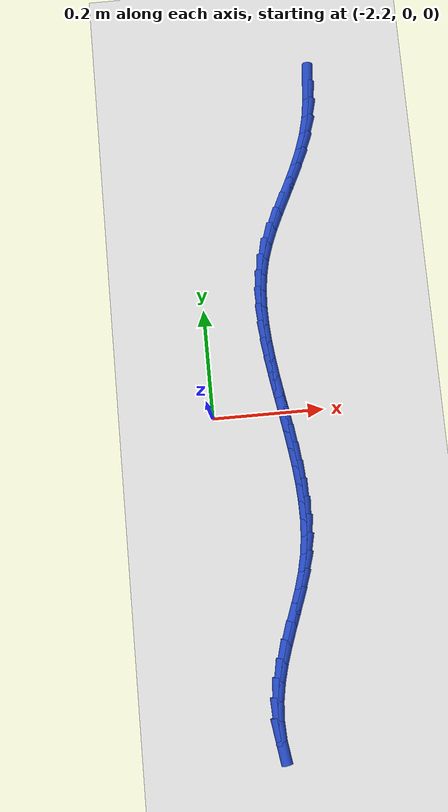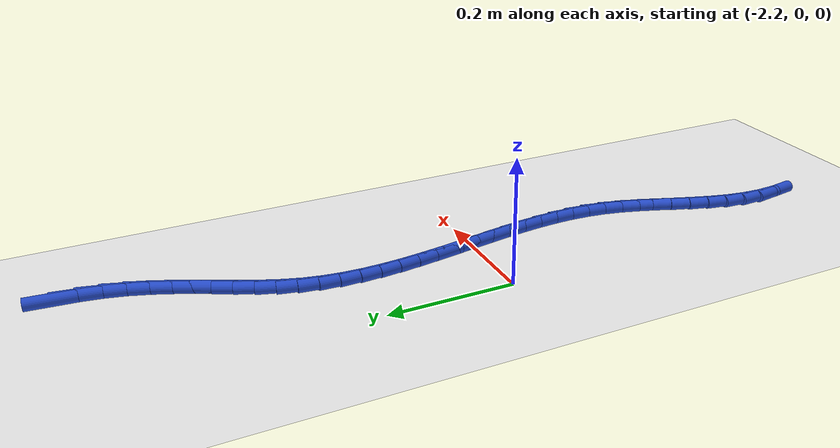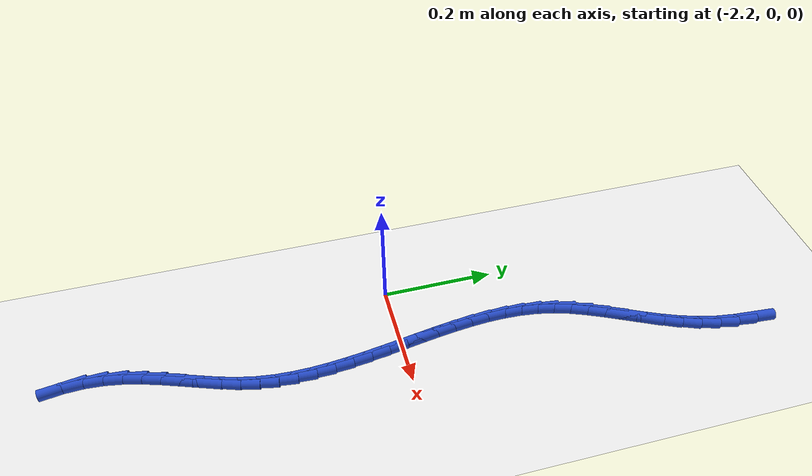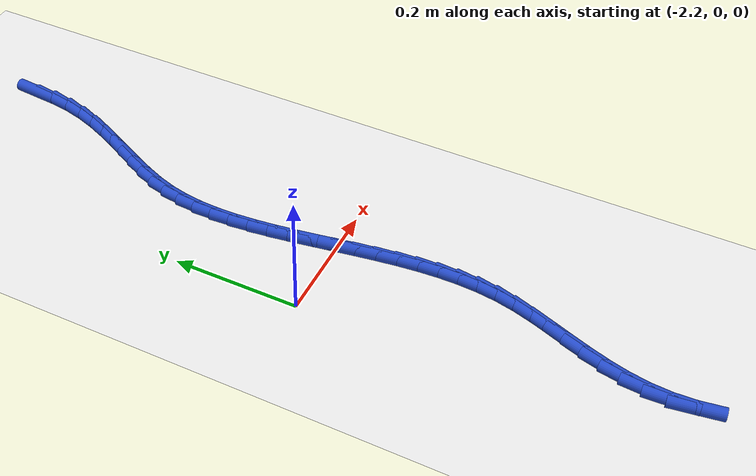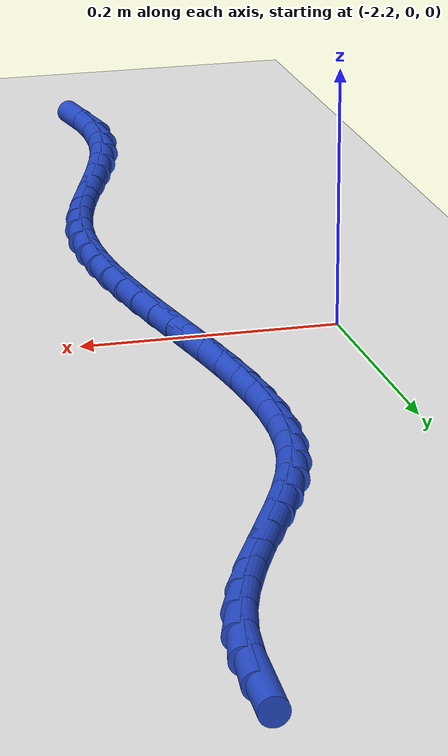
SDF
<sdf version="1.6">
 <world name="default">
  <model name="ground_plane">
   <static>1</static>
   <link name="link">
    <collision name="collision">
     <geometry><plane><normal>0 0 1</normal><size>100 100</size></plane></geometry>
     <surface><friction><ode><mu>100</mu><mu2>50</mu2></ode></friction></surface>
    </collision>
    <visual name="visual">
     <cast_shadows>0</cast_shadows>
     <geometry><plane><normal>0 0 1</normal><size>100 100</size></plane></geometry>
     <material>
      <script><uri>file://media/materials/scripts/gazebo.material</uri><name>Gazebo/WhiteGlow</name></script>
     </material>
    </visual>
   </link>
  </model>
  <model name="line">
   <link name="link_95">
    <pose>-1.9696212287315218 0.6146577486196141 0.01 0 1.57 1.4900182959752706</pose>
    <collision name="collision">
     <geometry><cylinder><radius>0.01</radius><length>0.08</length></cylinder></geometry>
    </collision>
    <visual name="visual">
     <material>
      <script><name>Gazebo/Blue</name><uri>file://media/materials/scripts/gazebo.material</uri></script>
     </material>
     <geometry><cylinder><radius>0.01</radius><length>0.08</length></cylinder></geometry>
    </visual>
   </link>
   <link name="link_96">
    <pose>-1.972421785812799 0.5800634027855969 0.01 0 1.57 1.422678304903201</pose>
    <collision name="collision">
     <geometry><cylinder><radius>0.01</radius><length>0.08</length></cylinder></geometry>
    </collision>
    <visual name="visual">
     <material>
      <script><name>Gazebo/Blue</name><uri>file://media/materials/scripts/gazebo.material</uri></script>
     </material>
     <geometry><cylinder><radius>0.01</radius><length>0.08</length></cylinder></geometry>
    </visual>
   </link>
   <link name="link_97">
    <pose>-1.977451255867348 0.5463562572593942 0.01 0 1.57 1.329379119762598</pose>
    <collision name="collision">
     <geometry><cylinder><radius>0.01</radius><length>0.08</length></cylinder></geometry>
    </collision>
    <visual name="visual">
     <material>
      <script><name>Gazebo/Blue</name><uri>file://media/materials/scripts/gazebo.material</uri></script>
     </material>
     <geometry><cylinder><radius>0.01</radius><length>0.08</length></cylinder></geometry>
    </visual>
   </link>
   <link name="link_98">
    <pose>-1.9854035048885796 0.514058834105539 0.01 0 1.57 1.2439595755664425</pose>
    <collision name="collision">
     <geometry><cylinder><radius>0.01</radius><length>0.08</length></cylinder></geometry>
    </collision>
    <visual name="visual">
     <material>
      <script><name>Gazebo/Blue</name><uri>file://media/materials/scripts/gazebo.material</uri></script>
     </material>
     <geometry><cylinder><radius>0.01</radius><length>0.08</length></cylinder></geometry>
    </visual>
   </link>
   <link name="link_99">
    <pose>-1.995901260927855 0.48309148231596033 0.01 0 1.57 1.1788622702502694</pose>
    <collision name="collision">
     <geometry><cylinder><radius>0.01</radius><length>0.08</length></cylinder></geometry>
    </collision>
    <visual name="visual">
     <material>
      <script><name>Gazebo/Blue</name><uri>file://media/materials/scripts/gazebo.material</uri></script>
     </material>
     <geometry><cylinder><radius>0.01</radius><length>0.08</length></cylinder></geometry>
    </visual>
   </link>
   <link name="link_100">
    <pose>-2.0082560915966883 0.4531996224902879 0.01 0 1.57 1.1353848162265325</pose>
    <collision name="collision">
     <geometry><cylinder><radius>0.01</radius><length>0.08</length></cylinder></geometry>
    </collision>
    <visual name="visual">
     <material>
      <script><name>Gazebo/Blue</name><uri>file://media/materials/scripts/gazebo.material</uri></script>
     </material>
     <geometry><cylinder><radius>0.01</radius><length>0.08</length></cylinder></geometry>
    </visual>
   </link>
   <link name="link_101">
    <pose>-2.0217795305533084 0.4241286561402684 0.01 0 1.57 1.1141545048040031</pose>
    <collision name="collision">
     <geometry><cylinder><radius>0.01</radius><length>0.08</length></cylinder></geometry>
    </collision>
    <visual name="visual">
     <material>
      <script><name>Gazebo/Blue</name><uri>file://media/materials/scripts/gazebo.material</uri></script>
     </material>
     <geometry><cylinder><radius>0.01</radius><length>0.08</length></cylinder></geometry>
    </visual>
   </link>
   <link name="link_102">
    <pose>-2.035783111455945 0.3956239847776501 0.01 0 1.57 1.1157328827567108</pose>
    <collision name="collision">
     <geometry><cylinder><radius>0.01</radius><length>0.08</length></cylinder></geometry>
    </collision>
    <visual name="visual">
     <material>
      <script><name>Gazebo/Blue</name><uri>file://media/materials/scripts/gazebo.material</uri></script>
     </material>
     <geometry><cylinder><radius>0.01</radius><length>0.08</length></cylinder></geometry>
    </visual>
   </link>
   <link name="link_103">
    <pose>-2.0495783679628268 0.36743100991417954 0.01 0 1.57 1.1409501786714986</pose>
    <collision name="collision">
     <geometry><cylinder><radius>0.01</radius><length>0.08</length></cylinder></geometry>
    </collision>
    <visual name="visual">
     <material>
      <script><name>Gazebo/Blue</name><uri>file://media/materials/scripts/gazebo.material</uri></script>
     </material>
     <geometry><cylinder><radius>0.01</radius><length>0.08</length></cylinder></geometry>
    </visual>
   </link>
   <link name="link_104">
    <pose>-2.062476833732182 0.3392951330616047 0.01 0 1.57 1.1909029460401648</pose>
    <collision name="collision">
     <geometry><cylinder><radius>0.01</radius><length>0.08</length></cylinder></geometry>
    </collision>
    <visual name="visual">
     <material>
      <script><name>Gazebo/Blue</name><uri>file://media/materials/scripts/gazebo.material</uri></script>
     </material>
     <geometry><cylinder><radius>0.01</radius><length>0.08</length></cylinder></geometry>
    </visual>
   </link>
   <link name="link_105">
    <pose>-2.0737900424222415 0.3109617557316721 0.01 0 1.57 1.2665187512723604</pose>
    <collision name="collision">
     <geometry><cylinder><radius>0.01</radius><length>0.08</length></cylinder></geometry>
    </collision>
    <visual name="visual">
     <material>
      <script><name>Gazebo/Blue</name><uri>file://media/materials/scripts/gazebo.material</uri></script>
     </material>
     <geometry><cylinder><radius>0.01</radius><length>0.08</length></cylinder></geometry>
    </visual>
   </link>
   <link name="link_106">
    <pose>-2.0828295277040314 0.2821762794402366 0.01 0 1.57 1.3615990546784527</pose>
    <collision name="collision">
     <geometry><cylinder><radius>0.01</radius><length>0.08</length></cylinder></geometry>
    </collision>
    <visual name="visual">
     <material>
      <script><name>Gazebo/Blue</name><uri>file://media/materials/scripts/gazebo.material</uri></script>
     </material>
     <geometry><cylinder><radius>0.01</radius><length>0.08</length></cylinder></geometry>
    </visual>
   </link>
   <link name="link_107">
    <pose>-2.0890790820119807 0.2527393766968404 0.01 0 1.57 1.4508606913899837</pose>
    <collision name="collision">
     <geometry><cylinder><radius>0.01</radius><length>0.08</length></cylinder></geometry>
    </collision>
    <visual name="visual">
     <material>
      <script><name>Gazebo/Blue</name><uri>file://media/materials/scripts/gazebo.material</uri></script>
     </material>
     <geometry><cylinder><radius>0.01</radius><length>0.08</length></cylinder></geometry>
    </visual>
   </link>
   <link name="link_108">
    <pose>-2.092702861386214 0.22267002166264438 0.01 0 1.57 1.5273970011703901</pose>
    <collision name="collision">
     <geometry><cylinder><radius>0.01</radius><length>0.08</length></cylinder></geometry>
    </collision>
    <visual name="visual">
     <material>
      <script><name>Gazebo/Blue</name><uri>file://media/materials/scripts/gazebo.material</uri></script>
     </material>
     <geometry><cylinder><radius>0.01</radius><length>0.08</length></cylinder></geometry>
    </visual>
   </link>
   <link name="link_109">
    <pose>-2.0940329721198263 0.19204107706267173 0.01 0 1.57 -1.5505054276512902</pose>
    <collision name="collision">
     <geometry><cylinder><radius>0.01</radius><length>0.08</length></cylinder></geometry>
    </collision>
    <visual name="visual">
     <material>
      <script><name>Gazebo/Blue</name><uri>file://media/materials/scripts/gazebo.material</uri></script>
     </material>
     <geometry><cylinder><radius>0.01</radius><length>0.08</length></cylinder></geometry>
    </visual>
   </link>
   <link name="link_110">
    <pose>-2.093401520505915 0.1609254056219439 0.01 0 1.57 -1.4992112444694161</pose>
    <collision name="collision">
     <geometry><cylinder><radius>0.01</radius><length>0.08</length></cylinder></geometry>
    </collision>
    <visual name="visual">
     <material>
      <script><name>Gazebo/Blue</name><uri>file://media/materials/scripts/gazebo.material</uri></script>
     </material>
     <geometry><cylinder><radius>0.01</radius><length>0.08</length></cylinder></geometry>
    </visual>
   </link>
   <link name="link_111">
    <pose>-2.0911406128375782 0.1293958700654841 0.01 0 1.57 -1.4596095478912465</pose>
    <collision name="collision">
     <geometry><cylinder><radius>0.01</radius><length>0.08</length></cylinder></geometry>
    </collision>
    <visual name="visual">
     <material>
      <script><name>Gazebo/Blue</name><uri>file://media/materials/scripts/gazebo.material</uri></script>
     </material>
     <geometry><cylinder><radius>0.01</radius><length>0.08</length></cylinder></geometry>
    </visual>
   </link>
   <link name="link_112">
    <pose>-2.087582355407912 0.09752533311831368 0.01 0 1.57 -1.4309654184831646</pose>
    <collision name="collision">
     <geometry><cylinder><radius>0.01</radius><length>0.08</length></cylinder></geometry>
    </collision>
    <visual name="visual">
     <material>
      <script><name>Gazebo/Blue</name><uri>file://media/materials/scripts/gazebo.material</uri></script>
     </material>
     <geometry><cylinder><radius>0.01</radius><length>0.08</length></cylinder></geometry>
    </visual>
   </link>
   <link name="link_113">
    <pose>-2.083058854510014 0.06538665750545591 0.01 0 1.57 -1.4126475384823705</pose>
    <collision name="collision">
     <geometry><cylinder><radius>0.01</radius><length>0.08</length></cylinder></geometry>
    </collision>
    <visual name="visual">
     <material>
      <script><name>Gazebo/Blue</name><uri>file://media/materials/scripts/gazebo.material</uri></script>
     </material>
     <geometry><cylinder><radius>0.01</radius><length>0.08</length></cylinder></geometry>
    </visual>
   </link>
   <link name="link_114">
    <pose>-2.077902216436981 0.03305270595193233 0.01 0 1.57 -1.4042008224446139</pose>
    <collision name="collision">
     <geometry><cylinder><radius>0.01</radius><length>0.08</length></cylinder></geometry>
    </collision>
    <visual name="visual">
     <material>
      <script><name>Gazebo/Blue</name><uri>file://media/materials/scripts/gazebo.material</uri></script>
     </material>
     <geometry><cylinder><radius>0.01</radius><length>0.08</length></cylinder></geometry>
    </visual>
   </link>
   <link name="link_115">
    <pose>-2.072444547481912 0.0005963411827660144 0.01 0 1.57 -1.4053800376622136</pose>
    <collision name="collision">
     <geometry><cylinder><radius>0.01</radius><length>0.08</length></cylinder></geometry>
    </collision>
    <visual name="visual">
     <material>
      <script><name>Gazebo/Blue</name><uri>file://media/materials/scripts/gazebo.material</uri></script>
     </material>
     <geometry><cylinder><radius>0.01</radius><length>0.08</length></cylinder></geometry>
    </visual>
   </link>
   <link name="link_116">
    <pose>-2.067017953937901 -0.031909574077021136 0.01 0 1.57 -1.4161600755981296</pose>
    <collision name="collision">
     <geometry><cylinder><radius>0.01</radius><length>0.08</length></cylinder></geometry>
    </collision>
    <visual name="visual">
     <material>
      <script><name>Gazebo/Blue</name><uri>file://media/materials/scripts/gazebo.material</uri></script>
     </material>
     <geometry><cylinder><radius>0.01</radius><length>0.08</length></cylinder></geometry>
    </visual>
   </link>
   <link name="link_117">
    <pose>-2.061954542098048 -0.06439217710240759 0.01 0 1.57 -1.436730231392857</pose>
    <collision name="collision">
     <geometry><cylinder><radius>0.01</radius><length>0.08</length></cylinder></geometry>
    </collision>
    <visual name="visual">
     <material>
      <script><name>Gazebo/Blue</name><uri>file://media/materials/scripts/gazebo.material</uri></script>
     </material>
     <geometry><cylinder><radius>0.01</radius><length>0.08</length></cylinder></geometry>
    </visual>
   </link>
   <link name="link_118">
    <pose>-2.0575864182554473 -0.09677860516836939 0.01 0 1.57 -1.467472232369463</pose>
    <collision name="collision">
     <geometry><cylinder><radius>0.01</radius><length>0.08</length></cylinder></geometry>
    </collision>
    <visual name="visual">
     <material>
      <script><name>Gazebo/Blue</name><uri>file://media/materials/scripts/gazebo.material</uri></script>
     </material>
     <geometry><cylinder><radius>0.01</radius><length>0.08</length></cylinder></geometry>
    </visual>
   </link>
   <link name="link_119">
    <pose>-2.0542456887031983 -0.128995995549885 0.01 0 1.57 -1.5089145734880656</pose>
    <collision name="collision">
     <geometry><cylinder><radius>0.01</radius><length>0.08</length></cylinder></geometry>
    </collision>
    <visual name="visual">
     <material>
      <script><name>Gazebo/Blue</name><uri>file://media/materials/scripts/gazebo.material</uri></script>
     </material>
     <geometry><cylinder><radius>0.01</radius><length>0.08</length></cylinder></geometry>
    </visual>
   </link>
   <link name="link_120">
    <pose>-2.0522644597343973 -0.16097148552193213 0.01 0 1.57 -1.5616489052709832</pose>
    <collision name="collision">
     <geometry><cylinder><radius>0.01</radius><length>0.08</length></cylinder></geometry>
    </collision>
    <visual name="visual">
     <material>
      <script><name>Gazebo/Blue</name><uri>file://media/materials/scripts/gazebo.material</uri></script>
     </material>
     <geometry><cylinder><radius>0.01</radius><length>0.08</length></cylinder></geometry>
    </visual>
   </link>
   <link name="link_121">
    <pose>-2.051974837642142 -0.19263221235948846 0.01 0 1.57 1.5154031285437515</pose>
    <collision name="collision">
     <geometry><cylinder><radius>0.01</radius><length>0.08</length></cylinder></geometry>
    </collision>
    <visual name="visual">
     <material>
      <script><name>Gazebo/Blue</name><uri>file://media/materials/scripts/gazebo.material</uri></script>
     </material>
     <geometry><cylinder><radius>0.01</radius><length>0.08</length></cylinder></geometry>
    </visual>
   </link>
   <link name="link_122">
    <pose>-2.0537089287195283 -0.22390531333753239 0.01 0 1.57 1.438832772551925</pose>
    <collision name="collision">
     <geometry><cylinder><radius>0.01</radius><length>0.08</length></cylinder></geometry>
    </collision>
    <visual name="visual">
     <material>
      <script><name>Gazebo/Blue</name><uri>file://media/materials/scripts/gazebo.material</uri></script>
     </material>
     <geometry><cylinder><radius>0.01</radius><length>0.08</length></cylinder></geometry>
    </visual>
   </link>
   <link name="link_123">
    <pose>-2.0577988392596547 -0.2547179257310401 0.01 0 1.57 1.353163530829386</pose>
    <collision name="collision">
     <geometry><cylinder><radius>0.01</radius><length>0.08</length></cylinder></geometry>
    </collision>
    <visual name="visual">
     <material>
      <script><name>Gazebo/Blue</name><uri>file://media/materials/scripts/gazebo.material</uri></script>
     </material>
     <geometry><cylinder><radius>0.01</radius><length>0.08</length></cylinder></geometry>
    </visual>
   </link>
   <link name="link_124">
    <pose>-2.064498822261176 -0.28501606182693645 0.01 0 1.57 1.2819944780004167</pose>
    <collision name="collision">
     <geometry><cylinder><radius>0.01</radius><length>0.08</length></cylinder></geometry>
    </collision>
    <visual name="visual">
     <material>
      <script><name>Gazebo/Blue</name><uri>file://media/materials/scripts/gazebo.material</uri></script>
     </material>
     <geometry><cylinder><radius>0.01</radius><length>0.08</length></cylinder></geometry>
    </visual>
   </link>
   <link name="link_125">
    <pose>-2.0733809001316392 -0.31491113616840066 0.01 0 1.57 1.2373725815007814</pose>
    <collision name="collision">
     <geometry><cylinder><radius>0.01</radius><length>0.08</length></cylinder></geometry>
    </collision>
    <visual name="visual">
     <material>
      <script><name>Gazebo/Blue</name><uri>file://media/materials/scripts/gazebo.material</uri></script>
     </material>
     <geometry><cylinder><radius>0.01</radius><length>0.08</length></cylinder></geometry>
    </visual>
   </link>
   <link name="link_126">
    <pose>-2.08366385170287 -0.34460020484737014 0.01 0 1.57 1.218857124103431</pose>
    <collision name="collision">
     <geometry><cylinder><radius>0.01</radius><length>0.08</length></cylinder></geometry>
    </collision>
    <visual name="visual">
     <material>
      <script><name>Gazebo/Blue</name><uri>file://media/materials/scripts/gazebo.material</uri></script>
     </material>
     <geometry><cylinder><radius>0.01</radius><length>0.08</length></cylinder></geometry>
    </visual>
   </link>
   <link name="link_127">
    <pose>-2.094563477213293 -0.37428104609588164 0.01 0 1.57 1.2258704219103418</pose>
    <collision name="collision">
     <geometry><cylinder><radius>0.01</radius><length>0.08</length></cylinder></geometry>
    </collision>
    <visual name="visual">
     <material>
      <script><name>Gazebo/Blue</name><uri>file://media/materials/scripts/gazebo.material</uri></script>
     </material>
     <geometry><cylinder><radius>0.01</radius><length>0.08</length></cylinder></geometry>
    </visual>
   </link>
   <link name="link_128">
    <pose>-2.1052955769013333 -0.40415143814597443 0.01 0 1.57 1.2581610497840485</pose>
    <collision name="collision">
     <geometry><cylinder><radius>0.01</radius><length>0.08</length></cylinder></geometry>
    </collision>
    <visual name="visual">
     <material>
      <script><name>Gazebo/Blue</name><uri>file://media/materials/scripts/gazebo.material</uri></script>
     </material>
     <geometry><cylinder><radius>0.01</radius><length>0.08</length></cylinder></geometry>
    </visual>
   </link>
   <link name="link_129">
    <pose>-2.1150759510054167 -0.43440915922968654 0.01 0 1.57 1.315659667804378</pose>
    <collision name="collision">
     <geometry><cylinder><radius>0.01</radius><length>0.08</length></cylinder></geometry>
    </collision>
    <visual name="visual">
     <material>
      <script><name>Gazebo/Blue</name><uri>file://media/materials/scripts/gazebo.material</uri></script>
     </material>
     <geometry><cylinder><radius>0.01</radius><length>0.08</length></cylinder></geometry>
    </visual>
   </link>
   <link name="link_130">
    <pose>-2.1231203997639696 -0.46525198757905667 0.01 0 1.57 1.3978628880229436</pose>
    <collision name="collision">
     <geometry><cylinder><radius>0.01</radius><length>0.08</length></cylinder></geometry>
    </collision>
    <visual name="visual">
     <material>
      <script><name>Gazebo/Blue</name><uri>file://media/materials/scripts/gazebo.material</uri></script>
     </material>
     <geometry><cylinder><radius>0.01</radius><length>0.08</length></cylinder></geometry>
    </visual>
   </link>
   <link name="link_131">
    <pose>-2.128644723415417 -0.49687770142612364 0.01 0 1.57 1.5027152083177417</pose>
    <collision name="collision">
     <geometry><cylinder><radius>0.01</radius><length>0.08</length></cylinder></geometry>
    </collision>
    <visual name="visual">
     <material>
      <script><name>Gazebo/Blue</name><uri>file://media/materials/scripts/gazebo.material</uri></script>
     </material>
     <geometry><cylinder><radius>0.01</radius><length>0.08</length></cylinder></geometry>
    </visual>
   </link>
   <link name="link_132">
    <pose>-2.1308678600254387 -0.5294814662160314 0.01 0 1.57 -1.5249169928767607</pose>
    <collision name="collision">
     <geometry><cylinder><radius>0.01</radius><length>0.08</length></cylinder></geometry>
    </collision>
    <visual name="visual">
     <material>
      <script><name>Gazebo/Blue</name><uri>file://media/materials/scripts/gazebo.material</uri></script>
     </material>
     <geometry><cylinder><radius>0.01</radius><length>0.08</length></cylinder></geometry>
    </visual>
   </link>
   <link name="link_133">
    <pose>-2.1293293633365806 -0.5629914790841569 0.01 0 1.57 -1.4193130547698984</pose>
    <collision name="collision">
     <geometry><cylinder><radius>0.01</radius><length>0.08</length></cylinder></geometry>
    </collision>
    <visual name="visual">
     <material>
      <script><name>Gazebo/Blue</name><uri>file://media/materials/scripts/gazebo.material</uri></script>
     </material>
     <geometry><cylinder><radius>0.01</radius><length>0.08</length></cylinder></geometry>
    </visual>
   </link>
  </model>
 </world>
</sdf>
